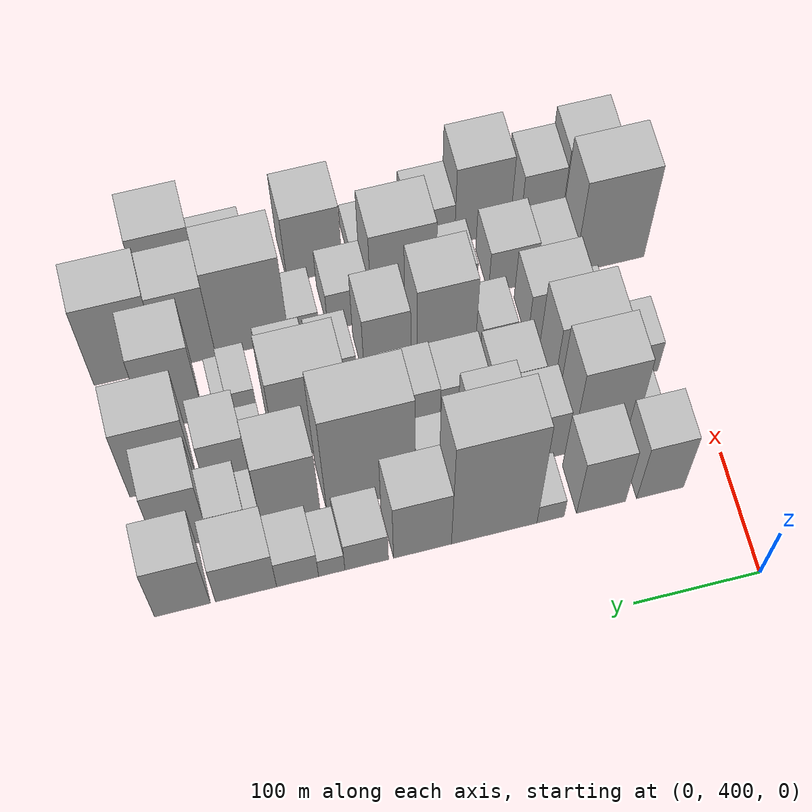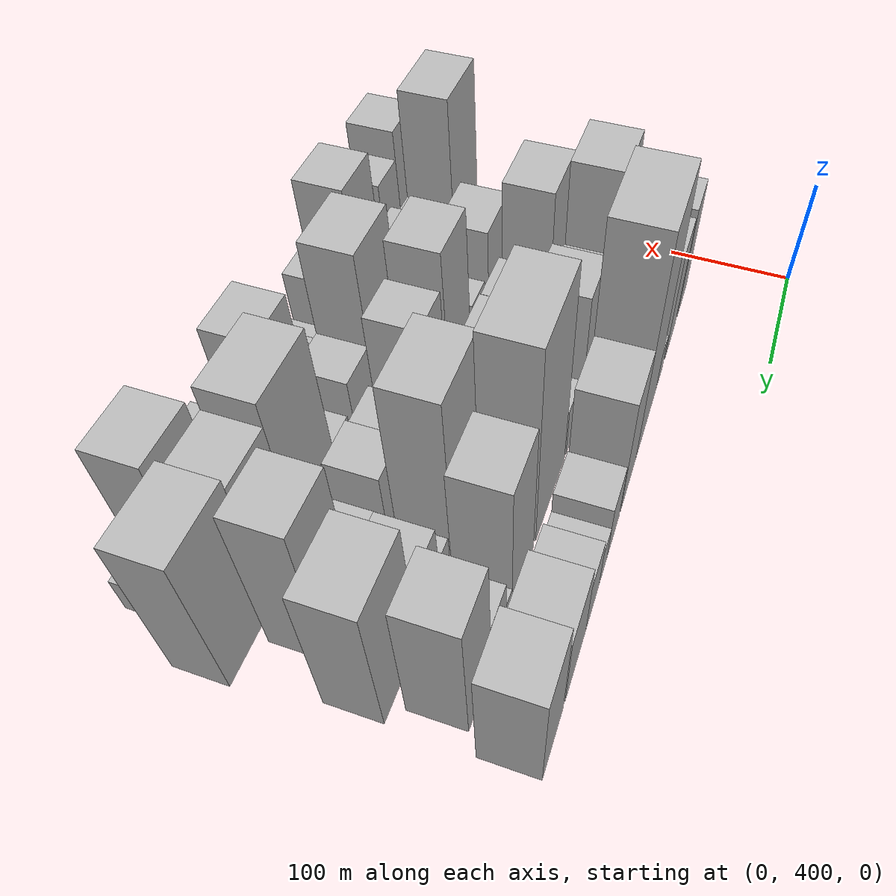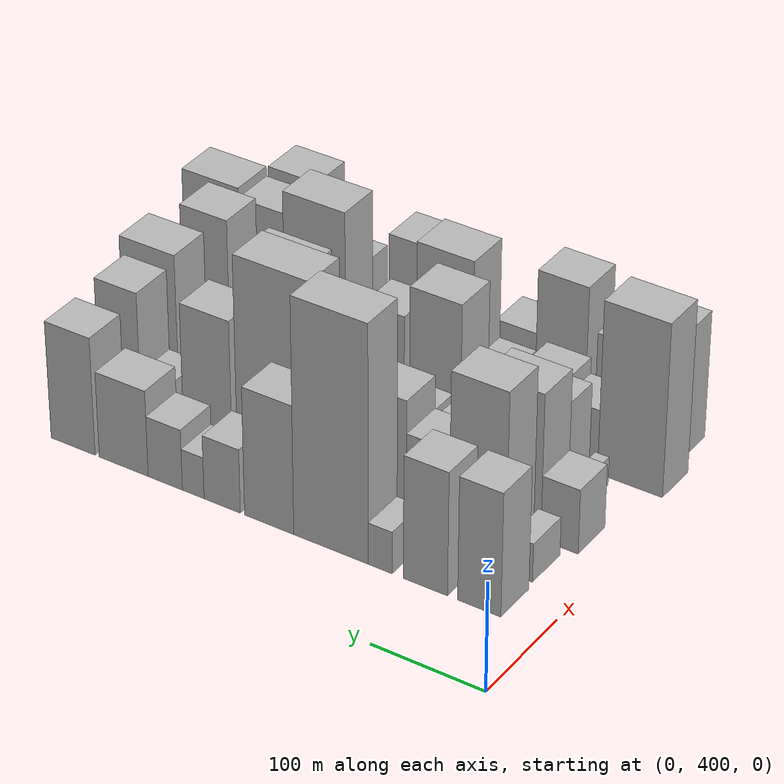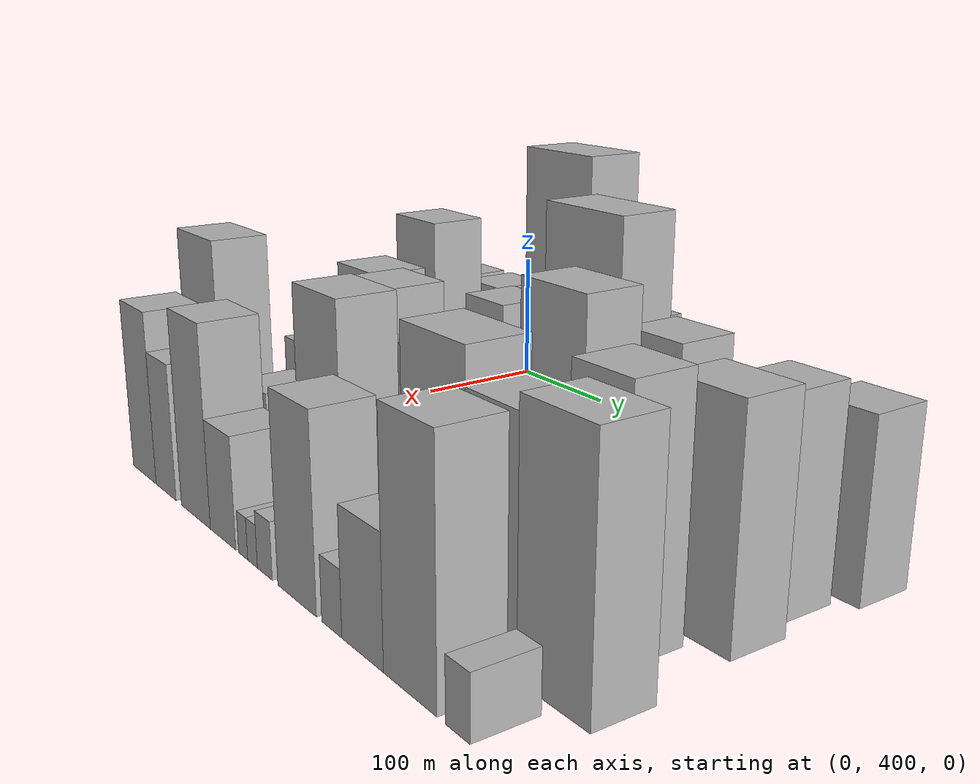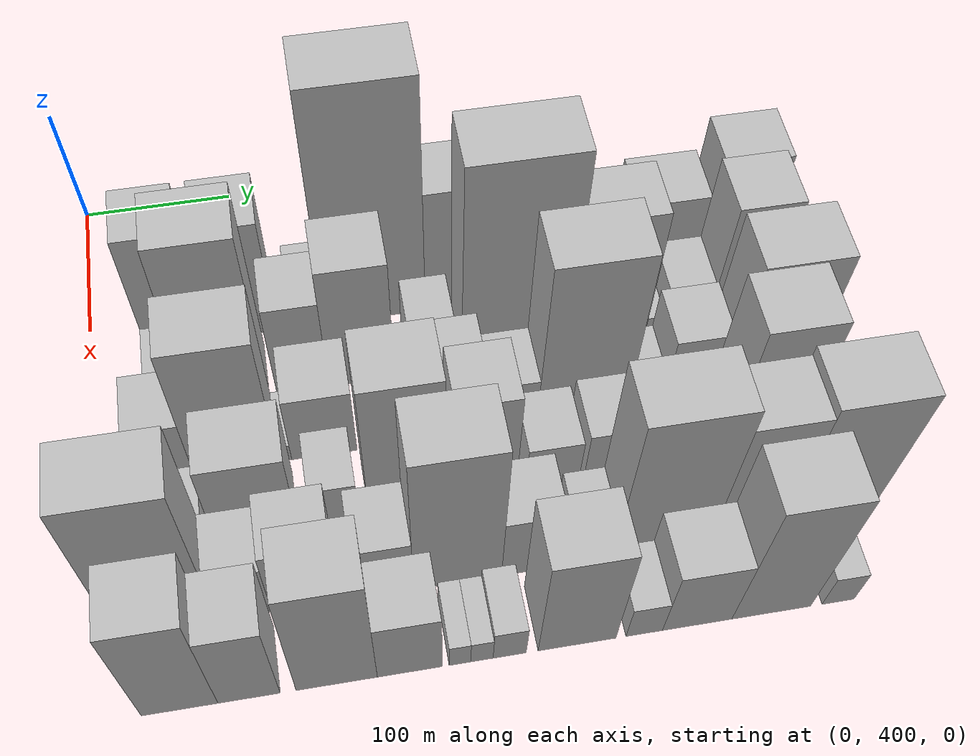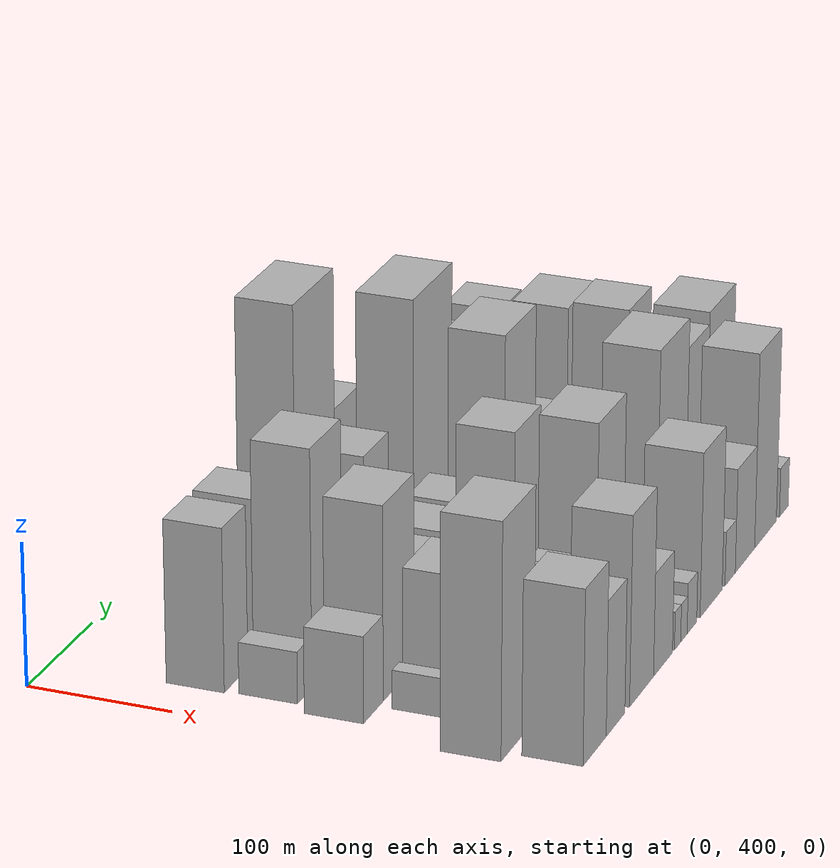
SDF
<sdf version="1.6">
 <world name="default">
  <model name="building_34">
   <static>1</static>
   <pose>100.0000 455.6009 0 0.000000 0.000000 0.000000</pose>
   <link name="link">
    <pose>0 0 57.00 0 0 0</pose>
    <collision name="collision"><geometry><box><size>40.0000 37.9189 114.0000</size></box></geometry></collision>
    <visual name="visual">
     <cast_shadows>0</cast_shadows>
     <geometry><box><size>40.0000 37.9189 114.0000</size></box></geometry>
     <material>
      <script>
       <uri>model://HANNAS_wall/materials/scripts</uri>
       <uri>model://HANNAS_wall/materials/textures</uri>
       <name>vrc/HANNAS_wall</name>
      </script>
     </material>
    </visual>
   </link>
  </model>
  <model name="building_35">
   <static>1</static>
   <pose>100.0000 503.2445 0 0.000000 0.000000 0.000000</pose>
   <link name="link">
    <pose>0 0 57.00 0 0 0</pose>
    <collision name="collision"><geometry><box><size>40.0000 39.3681 114.0000</size></box></geometry></collision>
    <visual name="visual">
     <cast_shadows>0</cast_shadows>
     <geometry><box><size>40.0000 39.3681 114.0000</size></box></geometry>
     <material>
      <script>
       <uri>model://HANNAS_wall/materials/scripts</uri>
       <uri>model://HANNAS_wall/materials/textures</uri>
       <name>vrc/HANNAS_wall</name>
      </script>
     </material>
    </visual>
   </link>
  </model>
  <model name="building_36">
   <static>1</static>
   <pose>100.0000 543.7917 0 0.000000 0.000000 0.000000</pose>
   <link name="link">
    <pose>0 0 19.50 0 0 0</pose>
    <collision name="collision"><geometry><box><size>40.0000 21.7262 39.0000</size></box></geometry></collision>
    <visual name="visual">
     <cast_shadows>0</cast_shadows>
     <geometry><box><size>40.0000 21.7262 39.0000</size></box></geometry>
     <material>
      <script>
       <uri>model://HANNAS_wall/materials/scripts</uri>
       <uri>model://HANNAS_wall/materials/textures</uri>
       <name>vrc/HANNAS_wall</name>
      </script>
     </material>
    </visual>
   </link>
  </model>
  <model name="building_37">
   <static>1</static>
   <pose>100.0000 588.7584 0 0.000000 0.000000 0.000000</pose>
   <link name="link">
    <pose>0 0 109.50 0 0 0</pose>
    <collision name="collision"><geometry><box><size>40.0000 68.2071 219.0000</size></box></geometry></collision>
    <visual name="visual">
     <cast_shadows>0</cast_shadows>
     <geometry><box><size>40.0000 68.2071 219.0000</size></box></geometry>
     <material>
      <script>
       <uri>model://HANNAS_wall/materials/scripts</uri>
       <uri>model://HANNAS_wall/materials/textures</uri>
       <name>vrc/HANNAS_wall</name>
      </script>
     </material>
    </visual>
   </link>
  </model>
  <model name="building_38">
   <static>1</static>
   <pose>100.0000 645.7755 0 0.000000 0.000000 0.000000</pose>
   <link name="link">
    <pose>0 0 60.00 0 0 0</pose>
    <collision name="collision"><geometry><box><size>40.0000 45.8273 120.0000</size></box></geometry></collision>
    <visual name="visual">
     <cast_shadows>0</cast_shadows>
     <geometry><box><size>40.0000 45.8273 120.0000</size></box></geometry>
     <material>
      <script>
       <uri>model://HANNAS_wall/materials/scripts</uri>
       <uri>model://HANNAS_wall/materials/textures</uri>
       <name>vrc/HANNAS_wall</name>
      </script>
     </material>
    </visual>
   </link>
  </model>
  <model name="building_39">
   <static>1</static>
   <pose>100.0000 689.8331 0 0.000000 0.000000 0.000000</pose>
   <link name="link">
    <pose>0 0 30.00 0 0 0</pose>
    <collision name="collision"><geometry><box><size>40.0000 34.2878 60.0000</size></box></geometry></collision>
    <visual name="visual">
     <cast_shadows>0</cast_shadows>
     <geometry><box><size>40.0000 34.2878 60.0000</size></box></geometry>
     <material>
      <script>
       <uri>model://HANNAS_wall/materials/scripts</uri>
       <uri>model://HANNAS_wall/materials/textures</uri>
       <name>vrc/HANNAS_wall</name>
      </script>
     </material>
    </visual>
   </link>
  </model>
  <model name="building_40">
   <static>1</static>
   <pose>100.0000 717.3259 0 0.000000 0.000000 0.000000</pose>
   <link name="link">
    <pose>0 0 19.50 0 0 0</pose>
    <collision name="collision"><geometry><box><size>40.0000 20.6979 39.0000</size></box></geometry></collision>
    <visual name="visual">
     <cast_shadows>0</cast_shadows>
     <geometry><box><size>40.0000 20.6979 39.0000</size></box></geometry>
     <material>
      <script>
       <uri>model://HANNAS_wall/materials/scripts</uri>
       <uri>model://HANNAS_wall/materials/textures</uri>
       <name>vrc/HANNAS_wall</name>
      </script>
     </material>
    </visual>
   </link>
  </model>
  <model name="building_41">
   <static>1</static>
   <pose>100.0000 744.1089 0 0.000000 0.000000 0.000000</pose>
   <link name="link">
    <pose>0 0 28.50 0 0 0</pose>
    <collision name="collision"><geometry><box><size>40.0000 32.8681 57.0000</size></box></geometry></collision>
    <visual name="visual">
     <cast_shadows>0</cast_shadows>
     <geometry><box><size>40.0000 32.8681 57.0000</size></box></geometry>
     <material>
      <script>
       <uri>model://HANNAS_wall/materials/scripts</uri>
       <uri>model://HANNAS_wall/materials/textures</uri>
       <name>vrc/HANNAS_wall</name>
      </script>
     </material>
    </visual>
   </link>
  </model>
  <model name="building_42">
   <static>1</static>
   <pose>100.0000 784.3606 0 0.000000 0.000000 0.000000</pose>
   <link name="link">
    <pose>0 0 40.50 0 0 0</pose>
    <collision name="collision"><geometry><box><size>40.0000 47.6351 81.0000</size></box></geometry></collision>
    <visual name="visual">
     <cast_shadows>0</cast_shadows>
     <geometry><box><size>40.0000 47.6351 81.0000</size></box></geometry>
     <material>
      <script>
       <uri>model://HANNAS_wall/materials/scripts</uri>
       <uri>model://HANNAS_wall/materials/textures</uri>
       <name>vrc/HANNAS_wall</name>
      </script>
     </material>
    </visual>
   </link>
  </model>
  <model name="building_43">
   <static>1</static>
   <pose>100.0000 833.8512 0 0.000000 0.000000 0.000000</pose>
   <link name="link">
    <pose>0 0 55.50 0 0 0</pose>
    <collision name="collision"><geometry><box><size>40.0000 43.3461 111.0000</size></box></geometry></collision>
    <visual name="visual">
     <cast_shadows>0</cast_shadows>
     <geometry><box><size>40.0000 43.3461 111.0000</size></box></geometry>
     <material>
      <script>
       <uri>model://HANNAS_wall/materials/scripts</uri>
       <uri>model://HANNAS_wall/materials/textures</uri>
       <name>vrc/HANNAS_wall</name>
      </script>
     </material>
    </visual>
   </link>
  </model>
  <model name="building_74">
   <static>1</static>
   <pose>149.0000 448.7668 0 0.000000 0.000000 0.000000</pose>
   <link name="link">
    <pose>0 0 18.00 0 0 0</pose>
    <collision name="collision"><geometry><box><size>40.0000 19.7451 36.0000</size></box></geometry></collision>
    <visual name="visual">
     <cast_shadows>0</cast_shadows>
     <geometry><box><size>40.0000 19.7451 36.0000</size></box></geometry>
     <material>
      <script>
       <uri>model://HANNAS_wall/materials/scripts</uri>
       <uri>model://HANNAS_wall/materials/textures</uri>
       <name>vrc/HANNAS_wall</name>
      </script>
     </material>
    </visual>
   </link>
  </model>
  <model name="building_75">
   <static>1</static>
   <pose>149.0000 487.9407 0 0.000000 0.000000 0.000000</pose>
   <link name="link">
    <pose>0 0 82.50 0 0 0</pose>
    <collision name="collision"><geometry><box><size>40.0000 50.6026 165.0000</size></box></geometry></collision>
    <visual name="visual">
     <cast_shadows>0</cast_shadows>
     <geometry><box><size>40.0000 50.6026 165.0000</size></box></geometry>
     <material>
      <script>
       <uri>model://HANNAS_wall/materials/scripts</uri>
       <uri>model://HANNAS_wall/materials/textures</uri>
       <name>vrc/HANNAS_wall</name>
      </script>
     </material>
    </visual>
   </link>
  </model>
  <model name="building_76">
   <static>1</static>
   <pose>149.0000 535.1693 0 0.000000 0.000000 0.000000</pose>
   <link name="link">
    <pose>0 0 46.50 0 0 0</pose>
    <collision name="collision"><geometry><box><size>40.0000 33.8545 93.0000</size></box></geometry></collision>
    <visual name="visual">
     <cast_shadows>0</cast_shadows>
     <geometry><box><size>40.0000 33.8545 93.0000</size></box></geometry>
     <material>
      <script>
       <uri>model://HANNAS_wall/materials/scripts</uri>
       <uri>model://HANNAS_wall/materials/textures</uri>
       <name>vrc/HANNAS_wall</name>
      </script>
     </material>
    </visual>
   </link>
  </model>
  <model name="building_77">
   <static>1</static>
   <pose>149.0000 573.5191 0 0.000000 0.000000 0.000000</pose>
   <link name="link">
    <pose>0 0 61.50 0 0 0</pose>
    <collision name="collision"><geometry><box><size>40.0000 42.8451 123.0000</size></box></geometry></collision>
    <visual name="visual">
     <cast_shadows>0</cast_shadows>
     <geometry><box><size>40.0000 42.8451 123.0000</size></box></geometry>
     <material>
      <script>
       <uri>model://HANNAS_wall/materials/scripts</uri>
       <uri>model://HANNAS_wall/materials/textures</uri>
       <name>vrc/HANNAS_wall</name>
      </script>
     </material>
    </visual>
   </link>
  </model>
  <model name="building_78">
   <static>1</static>
   <pose>149.0000 619.9539 0 0.000000 0.000000 0.000000</pose>
   <link name="link">
    <pose>0 0 25.50 0 0 0</pose>
    <collision name="collision"><geometry><box><size>40.0000 30.0245 51.0000</size></box></geometry></collision>
    <visual name="visual">
     <cast_shadows>0</cast_shadows>
     <geometry><box><size>40.0000 30.0245 51.0000</size></box></geometry>
     <material>
      <script>
       <uri>model://HANNAS_wall/materials/scripts</uri>
       <uri>model://HANNAS_wall/materials/textures</uri>
       <name>vrc/HANNAS_wall</name>
      </script>
     </material>
    </visual>
   </link>
  </model>
  <model name="building_79">
   <static>1</static>
   <pose>149.0000 674.2326 0 0.000000 0.000000 0.000000</pose>
   <link name="link">
    <pose>0 0 99.00 0 0 0</pose>
    <collision name="collision"><geometry><box><size>40.0000 70.5329 198.0000</size></box></geometry></collision>
    <visual name="visual">
     <cast_shadows>0</cast_shadows>
     <geometry><box><size>40.0000 70.5329 198.0000</size></box></geometry>
     <material>
      <script>
       <uri>model://HANNAS_wall/materials/scripts</uri>
       <uri>model://HANNAS_wall/materials/textures</uri>
       <name>vrc/HANNAS_wall</name>
      </script>
     </material>
    </visual>
   </link>
  </model>
  <model name="building_80">
   <static>1</static>
   <pose>149.0000 737.7973 0 0.000000 0.000000 0.000000</pose>
   <link name="link">
    <pose>0 0 67.50 0 0 0</pose>
    <collision name="collision"><geometry><box><size>40.0000 46.5965 135.0000</size></box></geometry></collision>
    <visual name="visual">
     <cast_shadows>0</cast_shadows>
     <geometry><box><size>40.0000 46.5965 135.0000</size></box></geometry>
     <material>
      <script>
       <uri>model://HANNAS_wall/materials/scripts</uri>
       <uri>model://HANNAS_wall/materials/textures</uri>
       <name>vrc/HANNAS_wall</name>
      </script>
     </material>
    </visual>
   </link>
  </model>
  <model name="building_81">
   <static>1</static>
   <pose>149.0000 766.7592 0 0.000000 0.000000 0.000000</pose>
   <link name="link">
    <pose>0 0 13.50 0 0 0</pose>
    <collision name="collision"><geometry><box><size>40.0000 11.3273 27.0000</size></box></geometry></collision>
    <visual name="visual">
     <cast_shadows>0</cast_shadows>
     <geometry><box><size>40.0000 11.3273 27.0000</size></box></geometry>
     <material>
      <script>
       <uri>model://HANNAS_wall/materials/scripts</uri>
       <uri>model://HANNAS_wall/materials/textures</uri>
       <name>vrc/HANNAS_wall</name>
      </script>
     </material>
    </visual>
   </link>
  </model>
  <model name="building_82">
   <static>1</static>
   <pose>149.0000 787.4357 0 0.000000 0.000000 0.000000</pose>
   <link name="link">
    <pose>0 0 27.00 0 0 0</pose>
    <collision name="collision"><geometry><box><size>40.0000 30.0258 54.0000</size></box></geometry></collision>
    <visual name="visual">
     <cast_shadows>0</cast_shadows>
     <geometry><box><size>40.0000 30.0258 54.0000</size></box></geometry>
     <material>
      <script>
       <uri>model://HANNAS_wall/materials/scripts</uri>
       <uri>model://HANNAS_wall/materials/textures</uri>
       <name>vrc/HANNAS_wall</name>
      </script>
     </material>
    </visual>
   </link>
  </model>
  <model name="building_83">
   <static>1</static>
   <pose>149.0000 822.7872 0 0.000000 0.000000 0.000000</pose>
   <link name="link">
    <pose>0 0 64.50 0 0 0</pose>
    <collision name="collision"><geometry><box><size>40.0000 40.6771 129.0000</size></box></geometry></collision>
    <visual name="visual">
     <cast_shadows>0</cast_shadows>
     <geometry><box><size>40.0000 40.6771 129.0000</size></box></geometry>
     <material>
      <script>
       <uri>model://HANNAS_wall/materials/scripts</uri>
       <uri>model://HANNAS_wall/materials/textures</uri>
       <name>vrc/HANNAS_wall</name>
      </script>
     </material>
    </visual>
   </link>
  </model>
  <model name="building_113">
   <static>1</static>
   <pose>198.0000 444.7902 0 0.000000 0.000000 0.000000</pose>
   <link name="link">
    <pose>0 0 30.00 0 0 0</pose>
    <collision name="collision"><geometry><box><size>40.0000 33.2221 60.0000</size></box></geometry></collision>
    <visual name="visual">
     <cast_shadows>0</cast_shadows>
     <geometry><box><size>40.0000 33.2221 60.0000</size></box></geometry>
     <material>
      <script>
       <uri>model://HANNAS_wall/materials/scripts</uri>
       <uri>model://HANNAS_wall/materials/textures</uri>
       <name>vrc/HANNAS_wall</name>
      </script>
     </material>
    </visual>
   </link>
  </model>
  <model name="building_114">
   <static>1</static>
   <pose>198.0000 488.0010 0 0.000000 0.000000 0.000000</pose>
   <link name="link">
    <pose>0 0 67.50 0 0 0</pose>
    <collision name="collision"><geometry><box><size>40.0000 53.1996 135.0000</size></box></geometry></collision>
    <visual name="visual">
     <cast_shadows>0</cast_shadows>
     <geometry><box><size>40.0000 53.1996 135.0000</size></box></geometry>
     <material>
      <script>
       <uri>model://HANNAS_wall/materials/scripts</uri>
       <uri>model://HANNAS_wall/materials/textures</uri>
       <name>vrc/HANNAS_wall</name>
      </script>
     </material>
    </visual>
   </link>
  </model>
  <model name="building_115">
   <static>1</static>
   <pose>198.0000 518.6050 0 0.000000 0.000000 0.000000</pose>
   <link name="link">
    <pose>0 0 9.00 0 0 0</pose>
    <collision name="collision"><geometry><box><size>40.0000 8.0084 18.0000</size></box></geometry></collision>
    <visual name="visual">
     <cast_shadows>0</cast_shadows>
     <geometry><box><size>40.0000 8.0084 18.0000</size></box></geometry>
     <material>
      <script>
       <uri>model://HANNAS_wall/materials/scripts</uri>
       <uri>model://HANNAS_wall/materials/textures</uri>
       <name>vrc/HANNAS_wall</name>
      </script>
     </material>
    </visual>
   </link>
  </model>
  <model name="building_116">
   <static>1</static>
   <pose>198.0000 543.2314 0 0.000000 0.000000 0.000000</pose>
   <link name="link">
    <pose>0 0 34.50 0 0 0</pose>
    <collision name="collision"><geometry><box><size>40.0000 41.2443 69.0000</size></box></geometry></collision>
    <visual name="visual">
     <cast_shadows>0</cast_shadows>
     <geometry><box><size>40.0000 41.2443 69.0000</size></box></geometry>
     <material>
      <script>
       <uri>model://HANNAS_wall/materials/scripts</uri>
       <uri>model://HANNAS_wall/materials/textures</uri>
       <name>vrc/HANNAS_wall</name>
      </script>
     </material>
    </visual>
   </link>
  </model>
  <model name="building_117">
   <static>1</static>
   <pose>198.0000 586.6628 0 0.000000 0.000000 0.000000</pose>
   <link name="link">
    <pose>0 0 36.00 0 0 0</pose>
    <collision name="collision"><geometry><box><size>40.0000 39.6185 72.0000</size></box></geometry></collision>
    <visual name="visual">
     <cast_shadows>0</cast_shadows>
     <geometry><box><size>40.0000 39.6185 72.0000</size></box></geometry>
     <material>
      <script>
       <uri>model://HANNAS_wall/materials/scripts</uri>
       <uri>model://HANNAS_wall/materials/textures</uri>
       <name>vrc/HANNAS_wall</name>
      </script>
     </material>
    </visual>
   </link>
  </model>
  <model name="building_118">
   <static>1</static>
   <pose>198.0000 626.1315 0 0.000000 0.000000 0.000000</pose>
   <link name="link">
    <pose>0 0 37.50 0 0 0</pose>
    <collision name="collision"><geometry><box><size>40.0000 39.3190 75.0000</size></box></geometry></collision>
    <visual name="visual">
     <cast_shadows>0</cast_shadows>
     <geometry><box><size>40.0000 39.3190 75.0000</size></box></geometry>
     <material>
      <script>
       <uri>model://HANNAS_wall/materials/scripts</uri>
       <uri>model://HANNAS_wall/materials/textures</uri>
       <name>vrc/HANNAS_wall</name>
      </script>
     </material>
    </visual>
   </link>
  </model>
  <model name="building_119">
   <static>1</static>
   <pose>198.0000 663.8407 0 0.000000 0.000000 0.000000</pose>
   <link name="link">
    <pose>0 0 25.50 0 0 0</pose>
    <collision name="collision"><geometry><box><size>40.0000 30.0995 51.0000</size></box></geometry></collision>
    <visual name="visual">
     <cast_shadows>0</cast_shadows>
     <geometry><box><size>40.0000 30.0995 51.0000</size></box></geometry>
     <material>
      <script>
       <uri>model://HANNAS_wall/materials/scripts</uri>
       <uri>model://HANNAS_wall/materials/textures</uri>
       <name>vrc/HANNAS_wall</name>
      </script>
     </material>
    </visual>
   </link>
  </model>
  <model name="building_120">
   <static>1</static>
   <pose>198.0000 708.1974 0 0.000000 0.000000 0.000000</pose>
   <link name="link">
    <pose>0 0 82.50 0 0 0</pose>
    <collision name="collision"><geometry><box><size>40.0000 58.6139 165.0000</size></box></geometry></collision>
    <visual name="visual">
     <cast_shadows>0</cast_shadows>
     <geometry><box><size>40.0000 58.6139 165.0000</size></box></geometry>
     <material>
      <script>
       <uri>model://HANNAS_wall/materials/scripts</uri>
       <uri>model://HANNAS_wall/materials/textures</uri>
       <name>vrc/HANNAS_wall</name>
      </script>
     </material>
    </visual>
   </link>
  </model>
  <model name="building_121">
   <static>1</static>
   <pose>198.0000 752.1371 0 0.000000 0.000000 0.000000</pose>
   <link name="link">
    <pose>0 0 16.50 0 0 0</pose>
    <collision name="collision"><geometry><box><size>40.0000 17.2655 33.0000</size></box></geometry></collision>
    <visual name="visual">
     <cast_shadows>0</cast_shadows>
     <geometry><box><size>40.0000 17.2655 33.0000</size></box></geometry>
     <material>
      <script>
       <uri>model://HANNAS_wall/materials/scripts</uri>
       <uri>model://HANNAS_wall/materials/textures</uri>
       <name>vrc/HANNAS_wall</name>
      </script>
     </material>
    </visual>
   </link>
  </model>
  <model name="building_122">
   <static>1</static>
   <pose>198.0000 778.9814 0 0.000000 0.000000 0.000000</pose>
   <link name="link">
    <pose>0 0 36.00 0 0 0</pose>
    <collision name="collision"><geometry><box><size>40.0000 36.4230 72.0000</size></box></geometry></collision>
    <visual name="visual">
     <cast_shadows>0</cast_shadows>
     <geometry><box><size>40.0000 36.4230 72.0000</size></box></geometry>
     <material>
      <script>
       <uri>model://HANNAS_wall/materials/scripts</uri>
       <uri>model://HANNAS_wall/materials/textures</uri>
       <name>vrc/HANNAS_wall</name>
      </script>
     </material>
    </visual>
   </link>
  </model>
  <model name="building_123">
   <static>1</static>
   <pose>198.0000 827.9571 0 0.000000 0.000000 0.000000</pose>
   <link name="link">
    <pose>0 0 69.00 0 0 0</pose>
    <collision name="collision"><geometry><box><size>40.0000 53.5285 138.0000</size></box></geometry></collision>
    <visual name="visual">
     <cast_shadows>0</cast_shadows>
     <geometry><box><size>40.0000 53.5285 138.0000</size></box></geometry>
     <material>
      <script>
       <uri>model://HANNAS_wall/materials/scripts</uri>
       <uri>model://HANNAS_wall/materials/textures</uri>
       <name>vrc/HANNAS_wall</name>
      </script>
     </material>
    </visual>
   </link>
  </model>
  <model name="building_156">
   <static>1</static>
   <pose>247.0000 460.2576 0 0.000000 0.000000 0.000000</pose>
   <link name="link">
    <pose>0 0 13.50 0 0 0</pose>
    <collision name="collision"><geometry><box><size>40.0000 12.5259 27.0000</size></box></geometry></collision>
    <visual name="visual">
     <cast_shadows>0</cast_shadows>
     <geometry><box><size>40.0000 12.5259 27.0000</size></box></geometry>
     <material>
      <script>
       <uri>model://HANNAS_wall/materials/scripts</uri>
       <uri>model://HANNAS_wall/materials/textures</uri>
       <name>vrc/HANNAS_wall</name>
      </script>
     </material>
    </visual>
   </link>
  </model>
  <model name="building_157">
   <static>1</static>
   <pose>247.0000 496.6975 0 0.000000 0.000000 0.000000</pose>
   <link name="link">
    <pose>0 0 45.00 0 0 0</pose>
    <collision name="collision"><geometry><box><size>40.0000 50.3540 90.0000</size></box></geometry></collision>
    <visual name="visual">
     <cast_shadows>0</cast_shadows>
     <geometry><box><size>40.0000 50.3540 90.0000</size></box></geometry>
     <material>
      <script>
       <uri>model://HANNAS_wall/materials/scripts</uri>
       <uri>model://HANNAS_wall/materials/textures</uri>
       <name>vrc/HANNAS_wall</name>
      </script>
     </material>
    </visual>
   </link>
  </model>
  <model name="building_158">
   <static>1</static>
   <pose>247.0000 545.0121 0 0.000000 0.000000 0.000000</pose>
   <link name="link">
    <pose>0 0 24.00 0 0 0</pose>
    <collision name="collision"><geometry><box><size>40.0000 28.2753 48.0000</size></box></geometry></collision>
    <visual name="visual">
     <cast_shadows>0</cast_shadows>
     <geometry><box><size>40.0000 28.2753 48.0000</size></box></geometry>
     <material>
      <script>
       <uri>model://HANNAS_wall/materials/scripts</uri>
       <uri>model://HANNAS_wall/materials/textures</uri>
       <name>vrc/HANNAS_wall</name>
      </script>
     </material>
    </visual>
   </link>
  </model>
  <model name="building_159">
   <static>1</static>
   <pose>247.0000 588.8642 0 0.000000 0.000000 0.000000</pose>
   <link name="link">
    <pose>0 0 75.00 0 0 0</pose>
    <collision name="collision"><geometry><box><size>40.0000 47.4290 150.0000</size></box></geometry></collision>
    <visual name="visual">
     <cast_shadows>0</cast_shadows>
     <geometry><box><size>40.0000 47.4290 150.0000</size></box></geometry>
     <material>
      <script>
       <uri>model://HANNAS_wall/materials/scripts</uri>
       <uri>model://HANNAS_wall/materials/textures</uri>
       <name>vrc/HANNAS_wall</name>
      </script>
     </material>
    </visual>
   </link>
  </model>
  <model name="building_160">
   <static>1</static>
   <pose>247.0000 636.5103 0 0.000000 0.000000 0.000000</pose>
   <link name="link">
    <pose>0 0 60.00 0 0 0</pose>
    <collision name="collision"><geometry><box><size>40.0000 37.8632 120.0000</size></box></geometry></collision>
    <visual name="visual">
     <cast_shadows>0</cast_shadows>
     <geometry><box><size>40.0000 37.8632 120.0000</size></box></geometry>
     <material>
      <script>
       <uri>model://HANNAS_wall/materials/scripts</uri>
       <uri>model://HANNAS_wall/materials/textures</uri>
       <name>vrc/HANNAS_wall</name>
      </script>
     </material>
    </visual>
   </link>
  </model>
  <model name="building_161">
   <static>1</static>
   <pose>247.0000 678.0070 0 0.000000 0.000000 0.000000</pose>
   <link name="link">
    <pose>0 0 28.50 0 0 0</pose>
    <collision name="collision"><geometry><box><size>40.0000 33.1301 57.0000</size></box></geometry></collision>
    <visual name="visual">
     <cast_shadows>0</cast_shadows>
     <geometry><box><size>40.0000 33.1301 57.0000</size></box></geometry>
     <material>
      <script>
       <uri>model://HANNAS_wall/materials/scripts</uri>
       <uri>model://HANNAS_wall/materials/textures</uri>
       <name>vrc/HANNAS_wall</name>
      </script>
     </material>
    </visual>
   </link>
  </model>
  <model name="building_162">
   <static>1</static>
   <pose>247.0000 715.9243 0 0.000000 0.000000 0.000000</pose>
   <link name="link">
    <pose>0 0 31.50 0 0 0</pose>
    <collision name="collision"><geometry><box><size>40.0000 36.7045 63.0000</size></box></geometry></collision>
    <visual name="visual">
     <cast_shadows>0</cast_shadows>
     <geometry><box><size>40.0000 36.7045 63.0000</size></box></geometry>
     <material>
      <script>
       <uri>model://HANNAS_wall/materials/scripts</uri>
       <uri>model://HANNAS_wall/materials/textures</uri>
       <name>vrc/HANNAS_wall</name>
      </script>
     </material>
    </visual>
   </link>
  </model>
  <model name="building_163">
   <static>1</static>
   <pose>247.0000 754.4757 0 0.000000 0.000000 0.000000</pose>
   <link name="link">
    <pose>0 0 19.50 0 0 0</pose>
    <collision name="collision"><geometry><box><size>40.0000 22.3983 39.0000</size></box></geometry></collision>
    <visual name="visual">
     <cast_shadows>0</cast_shadows>
     <geometry><box><size>40.0000 22.3983 39.0000</size></box></geometry>
     <material>
      <script>
       <uri>model://HANNAS_wall/materials/scripts</uri>
       <uri>model://HANNAS_wall/materials/textures</uri>
       <name>vrc/HANNAS_wall</name>
      </script>
     </material>
    </visual>
   </link>
  </model>
  <model name="building_164">
   <static>1</static>
   <pose>247.0000 770.8162 0 0.000000 0.000000 0.000000</pose>
   <link name="link">
    <pose>0 0 12.00 0 0 0</pose>
    <collision name="collision"><geometry><box><size>40.0000 10.2827 24.0000</size></box></geometry></collision>
    <visual name="visual">
     <cast_shadows>0</cast_shadows>
     <geometry><box><size>40.0000 10.2827 24.0000</size></box></geometry>
     <material>
      <script>
       <uri>model://HANNAS_wall/materials/scripts</uri>
       <uri>model://HANNAS_wall/materials/textures</uri>
       <name>vrc/HANNAS_wall</name>
      </script>
     </material>
    </visual>
   </link>
  </model>
  <model name="building_165">
   <static>1</static>
   <pose>247.0000 807.7834 0 0.000000 0.000000 0.000000</pose>
   <link name="link">
    <pose>0 0 75.00 0 0 0</pose>
    <collision name="collision"><geometry><box><size>40.0000 45.6516 150.0000</size></box></geometry></collision>
    <visual name="visual">
     <cast_shadows>0</cast_shadows>
     <geometry><box><size>40.0000 45.6516 150.0000</size></box></geometry>
     <material>
      <script>
       <uri>model://HANNAS_wall/materials/scripts</uri>
       <uri>model://HANNAS_wall/materials/textures</uri>
       <name>vrc/HANNAS_wall</name>
      </script>
     </material>
    </visual>
   </link>
  </model>
  <model name="building_201">
   <static>1</static>
   <pose>296.0000 439.6635 0 0.000000 0.000000 0.000000</pose>
   <link name="link">
    <pose>0 0 81.00 0 0 0</pose>
    <collision name="collision"><geometry><box><size>40.0000 58.4153 162.0000</size></box></geometry></collision>
    <visual name="visual">
     <cast_shadows>0</cast_shadows>
     <geometry><box><size>40.0000 58.4153 162.0000</size></box></geometry>
     <material>
      <script>
       <uri>model://HANNAS_wall/materials/scripts</uri>
       <uri>model://HANNAS_wall/materials/textures</uri>
       <name>vrc/HANNAS_wall</name>
      </script>
     </material>
    </visual>
   </link>
  </model>
  <model name="building_202">
   <static>1</static>
   <pose>296.0000 484.8091 0 0.000000 0.000000 0.000000</pose>
   <link name="link">
    <pose>0 0 30.00 0 0 0</pose>
    <collision name="collision"><geometry><box><size>40.0000 31.8758 60.0000</size></box></geometry></collision>
    <visual name="visual">
     <cast_shadows>0</cast_shadows>
     <geometry><box><size>40.0000 31.8758 60.0000</size></box></geometry>
     <material>
      <script>
       <uri>model://HANNAS_wall/materials/scripts</uri>
       <uri>model://HANNAS_wall/materials/textures</uri>
       <name>vrc/HANNAS_wall</name>
      </script>
     </material>
    </visual>
   </link>
  </model>
  <model name="building_203">
   <static>1</static>
   <pose>296.0000 520.7768 0 0.000000 0.000000 0.000000</pose>
   <link name="link">
    <pose>0 0 37.50 0 0 0</pose>
    <collision name="collision"><geometry><box><size>40.0000 40.0597 75.0000</size></box></geometry></collision>
    <visual name="visual">
     <cast_shadows>0</cast_shadows>
     <geometry><box><size>40.0000 40.0597 75.0000</size></box></geometry>
     <material>
      <script>
       <uri>model://HANNAS_wall/materials/scripts</uri>
       <uri>model://HANNAS_wall/materials/textures</uri>
       <name>vrc/HANNAS_wall</name>
      </script>
     </material>
    </visual>
   </link>
  </model>
  <model name="building_204">
   <static>1</static>
   <pose>296.0000 567.8149 0 0.000000 0.000000 0.000000</pose>
   <link name="link">
    <pose>0 0 31.50 0 0 0</pose>
    <collision name="collision"><geometry><box><size>40.0000 34.0165 63.0000</size></box></geometry></collision>
    <visual name="visual">
     <cast_shadows>0</cast_shadows>
     <geometry><box><size>40.0000 34.0165 63.0000</size></box></geometry>
     <material>
      <script>
       <uri>model://HANNAS_wall/materials/scripts</uri>
       <uri>model://HANNAS_wall/materials/textures</uri>
       <name>vrc/HANNAS_wall</name>
      </script>
     </material>
    </visual>
   </link>
  </model>
  <model name="building_205">
   <static>1</static>
   <pose>296.0000 611.2065 0 0.000000 0.000000 0.000000</pose>
   <link name="link">
    <pose>0 0 78.00 0 0 0</pose>
    <collision name="collision"><geometry><box><size>40.0000 52.7667 156.0000</size></box></geometry></collision>
    <visual name="visual">
     <cast_shadows>0</cast_shadows>
     <geometry><box><size>40.0000 52.7667 156.0000</size></box></geometry>
     <material>
      <script>
       <uri>model://HANNAS_wall/materials/scripts</uri>
       <uri>model://HANNAS_wall/materials/textures</uri>
       <name>vrc/HANNAS_wall</name>
      </script>
     </material>
    </visual>
   </link>
  </model>
  <model name="building_206">
   <static>1</static>
   <pose>296.0000 655.5617 0 0.000000 0.000000 0.000000</pose>
   <link name="link">
    <pose>0 0 34.50 0 0 0</pose>
    <collision name="collision"><geometry><box><size>40.0000 35.9437 69.0000</size></box></geometry></collision>
    <visual name="visual">
     <cast_shadows>0</cast_shadows>
     <geometry><box><size>40.0000 35.9437 69.0000</size></box></geometry>
     <material>
      <script>
       <uri>model://HANNAS_wall/materials/scripts</uri>
       <uri>model://HANNAS_wall/materials/textures</uri>
       <name>vrc/HANNAS_wall</name>
      </script>
     </material>
    </visual>
   </link>
  </model>
  <model name="building_207">
   <static>1</static>
   <pose>296.0000 693.0144 0 0.000000 0.000000 0.000000</pose>
   <link name="link">
    <pose>0 0 21.00 0 0 0</pose>
    <collision name="collision"><geometry><box><size>40.0000 24.9617 42.0000</size></box></geometry></collision>
    <visual name="visual">
     <cast_shadows>0</cast_shadows>
     <geometry><box><size>40.0000 24.9617 42.0000</size></box></geometry>
     <material>
      <script>
       <uri>model://HANNAS_wall/materials/scripts</uri>
       <uri>model://HANNAS_wall/materials/textures</uri>
       <name>vrc/HANNAS_wall</name>
      </script>
     </material>
    </visual>
   </link>
  </model>
  <model name="building_208">
   <static>1</static>
   <pose>296.0000 735.2475 0 0.000000 0.000000 0.000000</pose>
   <link name="link">
    <pose>0 0 79.50 0 0 0</pose>
    <collision name="collision"><geometry><box><size>40.0000 59.5045 159.0000</size></box></geometry></collision>
    <visual name="visual">
     <cast_shadows>0</cast_shadows>
     <geometry><box><size>40.0000 59.5045 159.0000</size></box></geometry>
     <material>
      <script>
       <uri>model://HANNAS_wall/materials/scripts</uri>
       <uri>model://HANNAS_wall/materials/textures</uri>
       <name>vrc/HANNAS_wall</name>
      </script>
     </material>
    </visual>
   </link>
  </model>
  <model name="building_209">
   <static>1</static>
   <pose>296.0000 786.6087 0 0.000000 0.000000 0.000000</pose>
   <link name="link">
    <pose>0 0 69.00 0 0 0</pose>
    <collision name="collision"><geometry><box><size>40.0000 43.2178 138.0000</size></box></geometry></collision>
    <visual name="visual">
     <cast_shadows>0</cast_shadows>
     <geometry><box><size>40.0000 43.2178 138.0000</size></box></geometry>
     <material>
      <script>
       <uri>model://HANNAS_wall/materials/scripts</uri>
       <uri>model://HANNAS_wall/materials/textures</uri>
       <name>vrc/HANNAS_wall</name>
      </script>
     </material>
    </visual>
   </link>
  </model>
  <model name="building_210">
   <static>1</static>
   <pose>296.0000 835.9709 0 0.000000 0.000000 0.000000</pose>
   <link name="link">
    <pose>0 0 73.50 0 0 0</pose>
    <collision name="collision"><geometry><box><size>40.0000 55.5067 147.0000</size></box></geometry></collision>
    <visual name="visual">
     <cast_shadows>0</cast_shadows>
     <geometry><box><size>40.0000 55.5067 147.0000</size></box></geometry>
     <material>
      <script>
       <uri>model://HANNAS_wall/materials/scripts</uri>
       <uri>model://HANNAS_wall/materials/textures</uri>
       <name>vrc/HANNAS_wall</name>
      </script>
     </material>
    </visual>
   </link>
  </model>
  <model name="building_241">
   <static>1</static>
   <pose>345.0000 444.2924 0 0.000000 0.000000 0.000000</pose>
   <link name="link">
    <pose>0 0 60.00 0 0 0</pose>
    <collision name="collision"><geometry><box><size>40.0000 42.8696 120.0000</size></box></geometry></collision>
    <visual name="visual">
     <cast_shadows>0</cast_shadows>
     <geometry><box><size>40.0000 42.8696 120.0000</size></box></geometry>
     <material>
      <script>
       <uri>model://HANNAS_wall/materials/scripts</uri>
       <uri>model://HANNAS_wall/materials/textures</uri>
       <name>vrc/HANNAS_wall</name>
      </script>
     </material>
    </visual>
   </link>
  </model>
  <model name="building_242">
   <static>1</static>
   <pose>345.0000 483.3020 0 0.000000 0.000000 0.000000</pose>
   <link name="link">
    <pose>0 0 46.50 0 0 0</pose>
    <collision name="collision"><geometry><box><size>40.0000 35.1495 93.0000</size></box></geometry></collision>
    <visual name="visual">
     <cast_shadows>0</cast_shadows>
     <geometry><box><size>40.0000 35.1495 93.0000</size></box></geometry>
     <material>
      <script>
       <uri>model://HANNAS_wall/materials/scripts</uri>
       <uri>model://HANNAS_wall/materials/textures</uri>
       <name>vrc/HANNAS_wall</name>
      </script>
     </material>
    </visual>
   </link>
  </model>
  <model name="building_243">
   <static>1</static>
   <pose>345.0000 533.0865 0 0.000000 0.000000 0.000000</pose>
   <link name="link">
    <pose>0 0 66.00 0 0 0</pose>
    <collision name="collision"><geometry><box><size>40.0000 46.4194 132.0000</size></box></geometry></collision>
    <visual name="visual">
     <cast_shadows>0</cast_shadows>
     <geometry><box><size>40.0000 46.4194 132.0000</size></box></geometry>
     <material>
      <script>
       <uri>model://HANNAS_wall/materials/scripts</uri>
       <uri>model://HANNAS_wall/materials/textures</uri>
       <name>vrc/HANNAS_wall</name>
      </script>
     </material>
    </visual>
   </link>
  </model>
  <model name="building_244">
   <static>1</static>
   <pose>345.0000 575.0110 0 0.000000 0.000000 0.000000</pose>
   <link name="link">
    <pose>0 0 36.00 0 0 0</pose>
    <collision name="collision"><geometry><box><size>40.0000 37.4298 72.0000</size></box></geometry></collision>
    <visual name="visual">
     <cast_shadows>0</cast_shadows>
     <geometry><box><size>40.0000 37.4298 72.0000</size></box></geometry>
     <material>
      <script>
       <uri>model://HANNAS_wall/materials/scripts</uri>
       <uri>model://HANNAS_wall/materials/textures</uri>
       <name>vrc/HANNAS_wall</name>
      </script>
     </material>
    </visual>
   </link>
  </model>
  <model name="building_245">
   <static>1</static>
   <pose>345.0000 604.0061 0 0.000000 0.000000 0.000000</pose>
   <link name="link">
    <pose>0 0 13.50 0 0 0</pose>
    <collision name="collision"><geometry><box><size>40.0000 12.5604 27.0000</size></box></geometry></collision>
    <visual name="visual">
     <cast_shadows>0</cast_shadows>
     <geometry><box><size>40.0000 12.5604 27.0000</size></box></geometry>
     <material>
      <script>
       <uri>model://HANNAS_wall/materials/scripts</uri>
       <uri>model://HANNAS_wall/materials/textures</uri>
       <name>vrc/HANNAS_wall</name>
      </script>
     </material>
    </visual>
   </link>
  </model>
  <model name="building_246">
   <static>1</static>
   <pose>345.0000 616.7792 0 0.000000 0.000000 0.000000</pose>
   <link name="link">
    <pose>0 0 13.50 0 0 0</pose>
    <collision name="collision"><geometry><box><size>40.0000 12.9857 27.0000</size></box></geometry></collision>
    <visual name="visual">
     <cast_shadows>0</cast_shadows>
     <geometry><box><size>40.0000 12.9857 27.0000</size></box></geometry>
     <material>
      <script>
       <uri>model://HANNAS_wall/materials/scripts</uri>
       <uri>model://HANNAS_wall/materials/textures</uri>
       <name>vrc/HANNAS_wall</name>
      </script>
     </material>
    </visual>
   </link>
  </model>
  <model name="building_247">
   <static>1</static>
   <pose>345.0000 632.9612 0 0.000000 0.000000 0.000000</pose>
   <link name="link">
    <pose>0 0 18.00 0 0 0</pose>
    <collision name="collision"><geometry><box><size>40.0000 19.3782 36.0000</size></box></geometry></collision>
    <visual name="visual">
     <cast_shadows>0</cast_shadows>
     <geometry><box><size>40.0000 19.3782 36.0000</size></box></geometry>
     <material>
      <script>
       <uri>model://HANNAS_wall/materials/scripts</uri>
       <uri>model://HANNAS_wall/materials/textures</uri>
       <name>vrc/HANNAS_wall</name>
      </script>
     </material>
    </visual>
   </link>
  </model>
  <model name="building_248">
   <static>1</static>
   <pose>345.0000 672.6186 0 0.000000 0.000000 0.000000</pose>
   <link name="link">
    <pose>0 0 58.50 0 0 0</pose>
    <collision name="collision"><geometry><box><size>40.0000 45.9368 117.0000</size></box></geometry></collision>
    <visual name="visual">
     <cast_shadows>0</cast_shadows>
     <geometry><box><size>40.0000 45.9368 117.0000</size></box></geometry>
     <material>
      <script>
       <uri>model://HANNAS_wall/materials/scripts</uri>
       <uri>model://HANNAS_wall/materials/textures</uri>
       <name>vrc/HANNAS_wall</name>
      </script>
     </material>
    </visual>
   </link>
  </model>
  <model name="building_249">
   <static>1</static>
   <pose>345.0000 712.4636 0 0.000000 0.000000 0.000000</pose>
   <link name="link">
    <pose>0 0 19.50 0 0 0</pose>
    <collision name="collision"><geometry><box><size>40.0000 21.7531 39.0000</size></box></geometry></collision>
    <visual name="visual">
     <cast_shadows>0</cast_shadows>
     <geometry><box><size>40.0000 21.7531 39.0000</size></box></geometry>
     <material>
      <script>
       <uri>model://HANNAS_wall/materials/scripts</uri>
       <uri>model://HANNAS_wall/materials/textures</uri>
       <name>vrc/HANNAS_wall</name>
      </script>
     </material>
    </visual>
   </link>
  </model>
  <model name="building_250">
   <static>1</static>
   <pose>345.0000 744.1806 0 0.000000 0.000000 0.000000</pose>
   <link name="link">
    <pose>0 0 37.50 0 0 0</pose>
    <collision name="collision"><geometry><box><size>40.0000 41.6809 75.0000</size></box></geometry></collision>
    <visual name="visual">
     <cast_shadows>0</cast_shadows>
     <geometry><box><size>40.0000 41.6809 75.0000</size></box></geometry>
     <material>
      <script>
       <uri>model://HANNAS_wall/materials/scripts</uri>
       <uri>model://HANNAS_wall/materials/textures</uri>
       <name>vrc/HANNAS_wall</name>
      </script>
     </material>
    </visual>
   </link>
  </model>
  <model name="building_251">
   <static>1</static>
   <pose>345.0000 788.9062 0 0.000000 0.000000 0.000000</pose>
   <link name="link">
    <pose>0 0 70.50 0 0 0</pose>
    <collision name="collision"><geometry><box><size>40.0000 47.7702 141.0000</size></box></geometry></collision>
    <visual name="visual">
     <cast_shadows>0</cast_shadows>
     <geometry><box><size>40.0000 47.7702 141.0000</size></box></geometry>
     <material>
      <script>
       <uri>model://HANNAS_wall/materials/scripts</uri>
       <uri>model://HANNAS_wall/materials/textures</uri>
       <name>vrc/HANNAS_wall</name>
      </script>
     </material>
    </visual>
   </link>
  </model>
  <model name="building_252">
   <static>1</static>
   <pose>345.0000 829.6175 0 0.000000 0.000000 0.000000</pose>
   <link name="link">
    <pose>0 0 18.00 0 0 0</pose>
    <collision name="collision"><geometry><box><size>40.0000 19.6525 36.0000</size></box></geometry></collision>
    <visual name="visual">
     <cast_shadows>0</cast_shadows>
     <geometry><box><size>40.0000 19.6525 36.0000</size></box></geometry>
     <material>
      <script>
       <uri>model://HANNAS_wall/materials/scripts</uri>
       <uri>model://HANNAS_wall/materials/textures</uri>
       <name>vrc/HANNAS_wall</name>
      </script>
     </material>
    </visual>
   </link>
  </model>
 </world>
</sdf>
